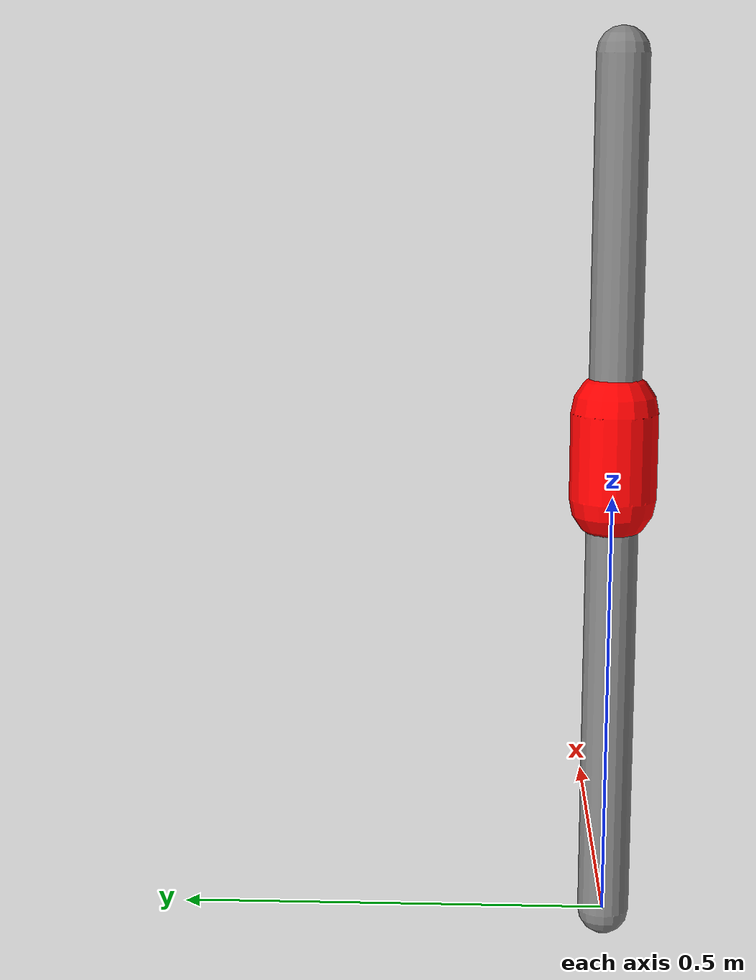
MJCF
<?xml version="1.0" encoding="utf-8"?>
<mujoco model="double_pendulum">

    <option gravity="0 0 -9.81">
    </option>

    <worldbody>

    <camera pos="-0.220 -4.372 1.228" xyaxes="0.999 -0.050 0.000 0.014 0.270 0.963"/>
    <camera name="fixed" pos="-0.220 -4.372 1.228" xyaxes="0.999 -0.050 0.000 0.014 0.270 0.963"/>

        <body name="base" pos="0 0 0">

            <body name="link1" pos="0 0 0">
                <joint name="joint1" type="hinge" axis="0 1 0" pos="0 0 0" limited="false"/>
                <geom name="link1_geom" type="capsule" fromto="0 0 0 0 0 1" size="0.03"/>

                <body name="link2" pos="0 0 0.5">
                    <joint name="joint2" type="slide" axis="0 0 1" pos="0 0 0" limited="true" range="0 0.5" />
                    <geom name="link2_geom" type="capsule" rgba="1 0 0 1"
                          fromto="0 0 0 0 0 +0.1" size="0.05"/>

                </body>

            </body>

        </body>
    </worldbody>

    <keyframe>
    <key name="keyframe_1" qpos="0.1 0" qvel="0 0" />
    </keyframe>

    <visual>
    <global offwidth="2560" offheight="1440"/>
    </visual>

    <actuator>
        <motor name="a1" joint="joint1" ctrlrange="-100 100" />
        <motor name="a2" joint="joint2" ctrlrange="-100 100" />
    </actuator>

</mujoco>
